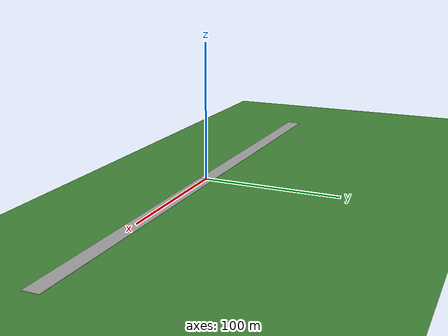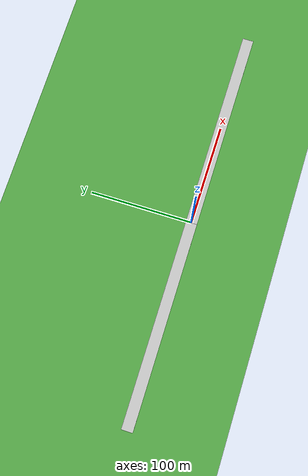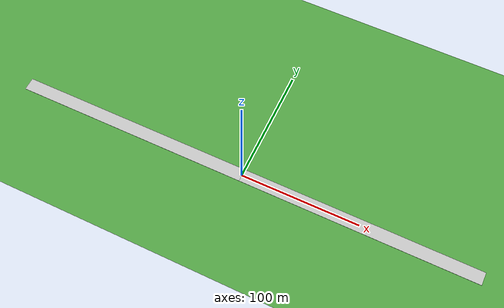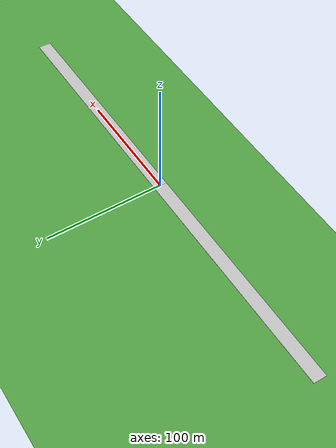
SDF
<sdf version="1.6">
 <world name="default">
  <light name="sun" type="directional">
   <pose>0 0 10 0 -0 0</pose>
   <diffuse>0.8 0.8 0.8 1</diffuse>
   <specular>0.1 0.1 0.1 1</specular>
   <attenuation>
    <range>1000</range>
    <constant>0.9</constant>
    <linear>0.01</linear>
    <quadratic>0.001</quadratic>
   </attenuation>
   <direction>-0.5 0.5 -1</direction>
  </light>
  <gravity>0 0 -9.8</gravity>
  <magnetic_field>6e-06 2.3e-05 -4.2e-05</magnetic_field>
  <atmosphere type="adiabatic"/>
  <physics name="default_physics" default="0" type="ode">
   <max_step_size>0.001</max_step_size>
   <real_time_factor>1</real_time_factor>
   <real_time_update_rate>1000</real_time_update_rate>
  </physics>
  <scene><ambient>0.4 0.4 0.4 1</ambient><background>0.7 0.7 0.7 1</background><shadows>1</shadows></scene>
  <spherical_coordinates>
   <surface_model>EARTH_WGS84</surface_model>
   <latitude_deg>0</latitude_deg>
   <longitude_deg>0</longitude_deg>
   <elevation>0</elevation>
   <heading_deg>0</heading_deg>
  </spherical_coordinates>
  <model name="grass_plane">
   <static>1</static>
   <link name="link">
    <collision name="collision">
     <geometry><plane><normal>0 0 1</normal><size>1000 1000</size></plane></geometry>
     <surface><friction><ode><mu>100</mu><mu2>50</mu2></ode></friction></surface>
    </collision>
    <visual name="visual">
     <cast_shadows>0</cast_shadows>
     <geometry><plane><normal>0 0 1</normal><size>1000 1000</size></plane></geometry>
     <material>
      <script>
       <uri>model://ds_grass_background/materials/scripts</uri>
       <uri>model://ds_grass_background/materials/textures</uri>
       <name>GrassBackground</name>
      </script>
     </material>
    </visual>
   </link>
  </model>
  <model name="(DS) Straight Road - 200m">
   <static>1</static>
   <link name="link">
    <inertial>
     <mass>1</mass>
     <inertia><ixx>1</ixx><iyy>1</iyy><izz>1</izz><ixy>0</ixy><ixz>0</ixz><iyz>0</iyz></inertia>
    </inertial>
    <collision name="collision">
     <geometry>
      <mesh><uri>model://ds_straight_road_200m/meshes/straight_road_200m.dae</uri><scale>1 1 1</scale></mesh>
     </geometry>
    </collision>
    <visual name="visual">
     <geometry>
      <mesh><uri>model://ds_straight_road_200m/meshes/straight_road_200m.dae</uri><scale>1 1 1</scale></mesh>
     </geometry>
    </visual>
   </link>
   <pose>100 10 0 0 -0 0</pose>
  </model>
  <model name="(DS) Straight Road - 200m_0">
   <static>1</static>
   <link name="link">
    <inertial>
     <mass>1</mass>
     <inertia><ixx>1</ixx><iyy>1</iyy><izz>1</izz><ixy>0</ixy><ixz>0</ixz><iyz>0</iyz></inertia>
    </inertial>
    <collision name="collision">
     <geometry>
      <mesh><uri>model://ds_straight_road_200m/meshes/straight_road_200m.dae</uri><scale>1 1 1</scale></mesh>
     </geometry>
    </collision>
    <visual name="visual">
     <geometry>
      <mesh><uri>model://ds_straight_road_200m/meshes/straight_road_200m.dae</uri><scale>1 1 1</scale></mesh>
     </geometry>
    </visual>
   </link>
   <pose>-100 10 0 0 -0 0</pose>
  </model>
 </world>
</sdf>
